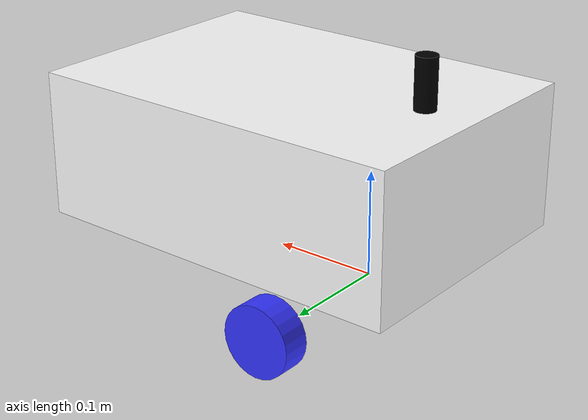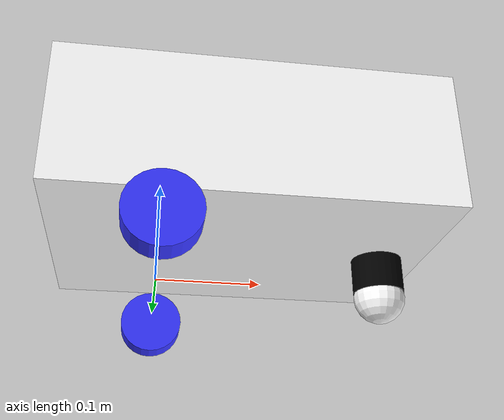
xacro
<?xml version="1.0"?>
<robot xmlns:xacro="http://www.ros.org/wiki/xacro">

     <xacro:include filename="inertial_macros.xacro" />

     <xacro:property name="chassis_length" value="0.368" />
     <xacro:property name="chassis_width" value="0.257" />
     <xacro:property name="chassis_height" value="0.137" />
     <xacro:property name="chassis_mass" value="2.1" />
     <!--robot_mass = [my_mass + robot_mass_unknown] - my_mass = 61.4 - 59.3 = 2.1kg-->
     <xacro:property name="wheel_radius" value="0.033" />
     <xacro:property name="wheel_thickness" value="0.026" />
     <xacro:property name="wheel_mass" value="0.038" />
     <xacro:property name="wheel_offset_x" value="0.103" />
     <xacro:property name="wheel_offset_y" value="0.145" />
     <xacro:property name="wheel_offset_z" value="-0.032" />
     <xacro:property name="caster_wheel_radius" value="0.025" />
     <xacro:property name="caster_wheel_mass" value="0.032" />
     <xacro:property name="caster_wheel_offset_x" value="0.323" />
     <xacro:property name="caster_wheel_offset_z" value="${wheel_offset_z - wheel_radius + caster_wheel_radius}" />

     <material name="white">
          <color rgba="1 1 1 1" />
     </material>

     <material name="orange">
          <color rgba="1 0.3 0.1 1" />
     </material>

     <material name="blue">
          <color rgba="0.2 0.2 1 1" />
     </material>

     <material name="black">
          <color rgba="0 0 0 1" />
     </material>

     <material name="red">
          <color rgba="1 0 0 1" />
     </material>

     <!-- BASE LINK -->

     <link name="base_link">

     </link>

     <!-- BASE FOOTPRINT LINK-->
     <joint name = "base_footprint_joint" type = "fixed">
          <parent link = "base_link"/>
          <child link = "base_footprint"/>
          <origin xyz = "0 0 0" rpy = "0 0 0"/>
     </joint>

     <link name = "base_footprint">
     </link>

     <!-- CHASSIS LINK -->

     <joint name="chassis_joint" type="fixed">
          <parent link="base_link" />
          <child link="chassis" />
          <origin xyz="${-wheel_offset_x} 0 ${-wheel_offset_z}" />
     </joint>

     <link name="chassis">
     <visual>
          <origin xyz="${chassis_length/2} 0 ${chassis_height/2}" />
          <geometry>
               <box size="${chassis_length} ${chassis_width} ${chassis_height}" />
          </geometry>
          <material name="white" />
     </visual>
     <collision>
          <origin xyz="${chassis_length/2} 0 ${chassis_height/2}" />
          <geometry>
               <box size="${chassis_length} ${chassis_width} ${chassis_height}" />
          </geometry>
     </collision>
     <xacro:inertial_box mass="0.5" x="${chassis_length}" y="${chassis_width}" z="${chassis_height}">
          <origin xyz="${chassis_length/2} 0 ${chassis_height/2}" rpy="0 0 0" />
     </xacro:inertial_box>
     </link>

     <gazebo reference="chassis">
          <material>Gazebo/White</material>
     </gazebo>

     <!-- LEFT WHEEL LINK -->

     <joint name="left_wheel_joint" type="continuous">
          <parent link="base_link" />
          <child link="left_wheel" />
          <origin xyz="0 ${wheel_offset_y} 0" rpy="-${pi/2} 0 0" />
          <axis xyz="0 0 1" />
     </joint>

     <link name="left_wheel">
     <visual>
          <geometry>
               <cylinder radius="${wheel_radius}" length="${wheel_thickness}" />
          </geometry>
          <material name="blue" />
     </visual>
     <collision>
          <geometry>
               <sphere radius="${wheel_radius}" />
          </geometry>
     </collision>
     <xacro:inertial_cylinder mass="${wheel_mass}" length="${wheel_thickness}" radius="${wheel_radius}">
          <origin xyz="0 0 0" rpy="0 0 0" />
     </xacro:inertial_cylinder>
     </link>

     <gazebo reference="left_wheel">
          <material>Gazebo/Blue</material>
     </gazebo>

     <!-- RIGHT WHEEL LINK -->

     <joint name="right_wheel_joint" type="continuous">
          <parent link="base_link" />
          <child link="right_wheel" />
          <origin xyz="0 ${-wheel_offset_y} 0" rpy="${pi/2} 0 0" />
          <axis xyz="0 0 -1" />
     </joint>

     <link name="right_wheel">
     <visual>
          <geometry>
               <cylinder radius="${wheel_radius}" length="${wheel_thickness}" />
          </geometry>
          <material name="blue" />
     </visual>
     <collision>
          <geometry>
               <sphere radius="${wheel_radius}" />
          </geometry>
     </collision>
     <xacro:inertial_cylinder mass="${wheel_mass}" length="${wheel_thickness}" radius="${wheel_radius}">
          <origin xyz="0 0 0" rpy="0 0 0" />
     </xacro:inertial_cylinder>
     </link>

     <gazebo reference="right_wheel">
          <material>Gazebo/Blue</material>
     </gazebo>

     <!-- CASTER WHEEL LINK -->

     <joint name="caster_wheel_joint" type="fixed">
          <parent link="chassis" />
          <child link="caster_wheel" />
          <origin xyz="${caster_wheel_offset_x} 0 ${caster_wheel_offset_z}" />
     </joint>

     <link name="caster_wheel">
     <visual>
          <geometry>
               <sphere radius="${caster_wheel_radius}" />
          </geometry>
          <material name="white" />
     </visual>
     <collision>
          <geometry>
               <sphere radius="${caster_wheel_radius}" />
          </geometry>
     </collision>
     <xacro:inertial_sphere mass="${caster_wheel_mass}" radius="${caster_wheel_radius}">
          <origin xyz="0 0 0" rpy="0 0 0" />
     </xacro:inertial_sphere>
     </link>

     <gazebo reference="caster_wheel">
          <material>Gazebo/White</material>
          <mu1 value="0.001" />
          <mu2 value="0.001" />
     </gazebo>

     <!--CASTER WHEEL SUPPORT LINK-->

     <joint name="caster_wheel_support_joint" type="fixed">
          <parent link="chassis" />
          <child link="caster_wheel_support" />
          <origin xyz="${caster_wheel_offset_x} 0 0" />
     </joint>

     <link name="caster_wheel_support">
     <visual>
          <geometry>
               <cylinder radius="${caster_wheel_radius}" length="0.07" />
          </geometry>
          <material name="black" />
     </visual>
     <collision>
          <geometry>
               <cylinder radius="${caster_wheel_radius}" length="0.07" />
          </geometry>
     </collision>
     <xacro:inertial_sphere mass="${caster_wheel_mass}" radius="${caster_wheel_radius}">
          <origin xyz="0 0 0" rpy="0 0 0" />
     </xacro:inertial_sphere>
     </link>

     <gazebo reference="caster_wheel_support">
          <material>Gazebo/Black</material>
     </gazebo>

     <!--LIDAR SUPPORT LINK-->

     <joint name="lidar_support_joint" type="fixed">
          <parent link="chassis" />
          <child link="lidar_support" />
          <origin xyz="0.05 0 0.15" />
     </joint>

     <link name="lidar_support">
     <visual>
          <geometry>
               <cylinder radius="0.01" length="0.07" />
          </geometry>
          <material name="black" />
     </visual>
     <collision>
          <geometry>
               <cylinder radius="${caster_wheel_radius}" length="0.07" />
          </geometry>
     </collision>
     <xacro:inertial_sphere mass="${caster_wheel_mass}" radius="${caster_wheel_radius}">
          <origin xyz="0 0 0" rpy="0 0 0" />
     </xacro:inertial_sphere>
     </link>

     <gazebo reference="lidar_support">
          <material>Gazebo/Black</material>
     </gazebo>

</robot>
